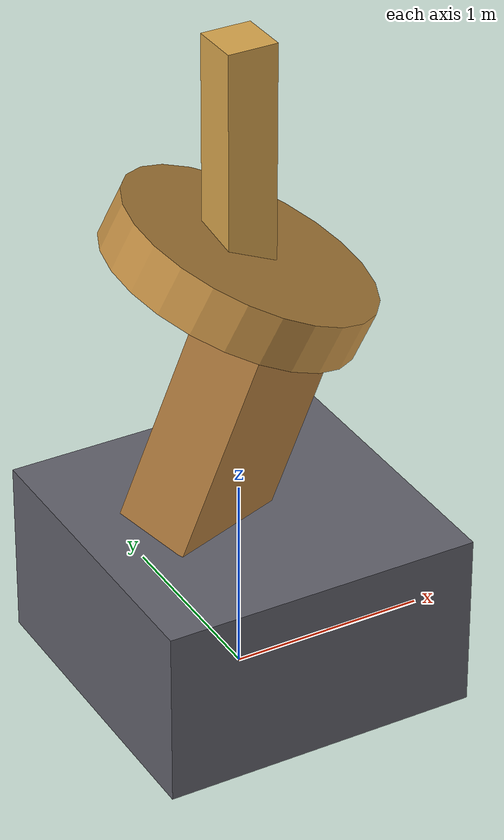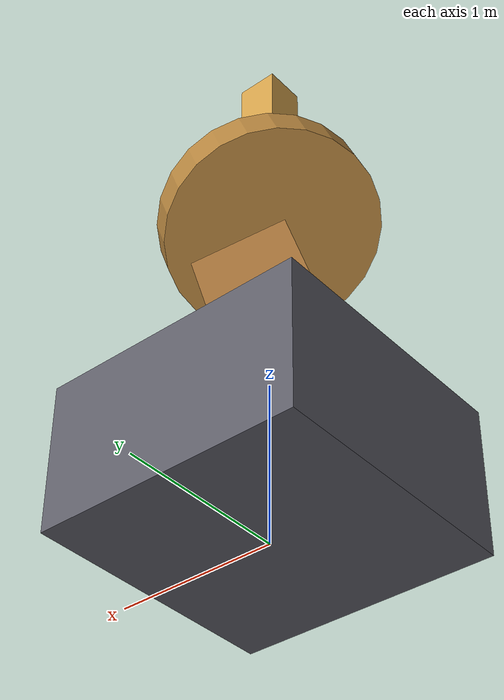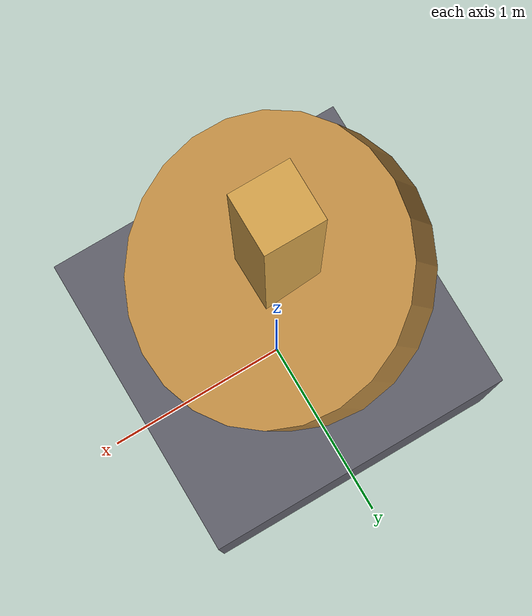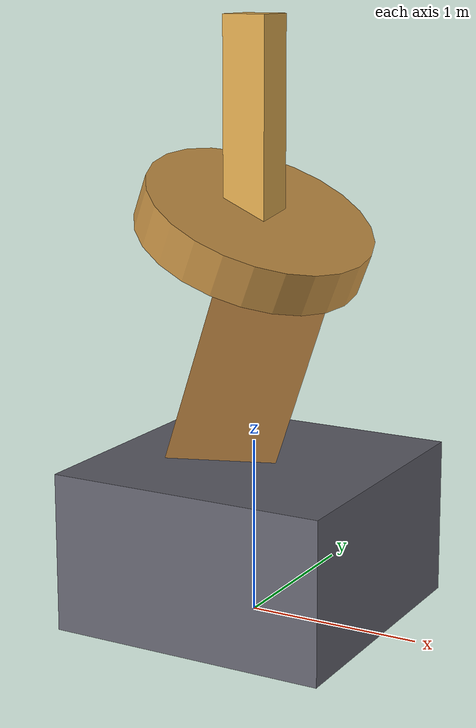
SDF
<?xml version="1.0" ?>
<sdf version="1.8">
  <model name="bronze_street_sculpture">
    <static>true</static>
    <link name="sculpture_link">
      <collision name="pedestal_col"><pose>0 0 0.45 0 0 0</pose><geometry><box><size>1.6 1.6 0.9</size></box></geometry></collision>
      <visual name="pedestal_vis"><pose>0 0 0.45 0 0 0</pose><geometry><box><size>1.6 1.6 0.9</size></box></geometry><material><ambient>0.3 0.3 0.32 1</ambient><diffuse>0.38 0.38 0.42 1</diffuse></material></visual>
      <!-- 現代幾何青銅雕塑體 (高 3.2m) -->
      <visual name="bronze_body_lower"><pose>0 0 1.5 0.2 0.3 0.4</pose><geometry><box><size>0.6 0.4 1.4</size></box></geometry><material><ambient>0.42 0.28 0.14 1</ambient><diffuse>0.65 0.45 0.22 1</diffuse><specular>0.88 0.70 0.35 1</specular></material></visual>
      <visual name="bronze_body_ring"><pose>0 0 2.2 0.4 0.2 0.8</pose><geometry><cylinder><radius>0.65</radius><length>0.25</length></cylinder></geometry><material><ambient>0.50 0.35 0.16 1</ambient><diffuse>0.75 0.55 0.26 1</diffuse><specular>0.92 0.78 0.40 1</specular></material></visual>
      <visual name="bronze_body_spire"><pose>0 0 2.8 0 0 0</pose><geometry><box><size>0.25 0.25 1.1</size></box></geometry><material><ambient>0.58 0.42 0.18 1</ambient><diffuse>0.85 0.65 0.30 1</diffuse><specular>0.98 0.88 0.50 1</specular></material></visual>
    </link>
  </model>
</sdf>
